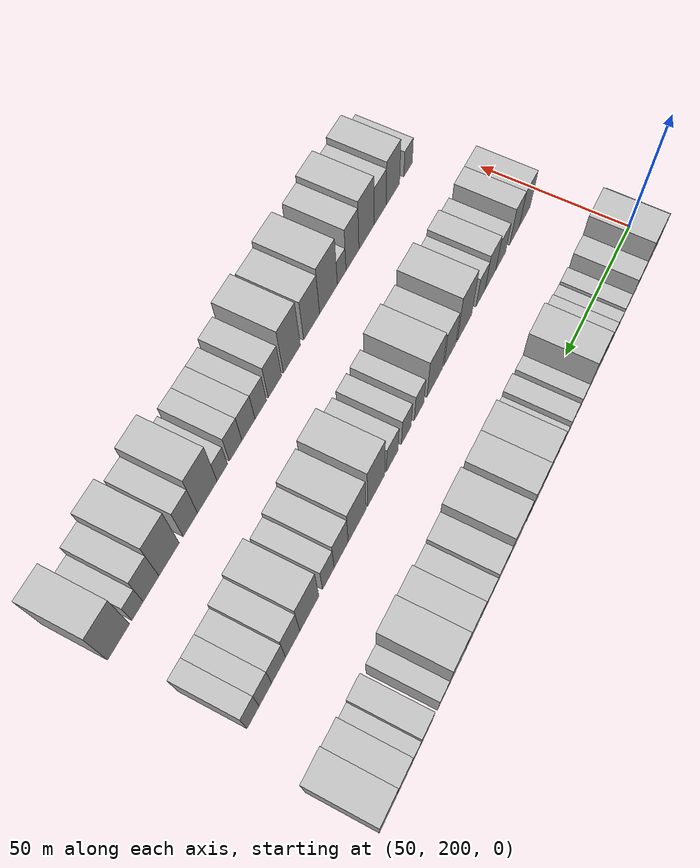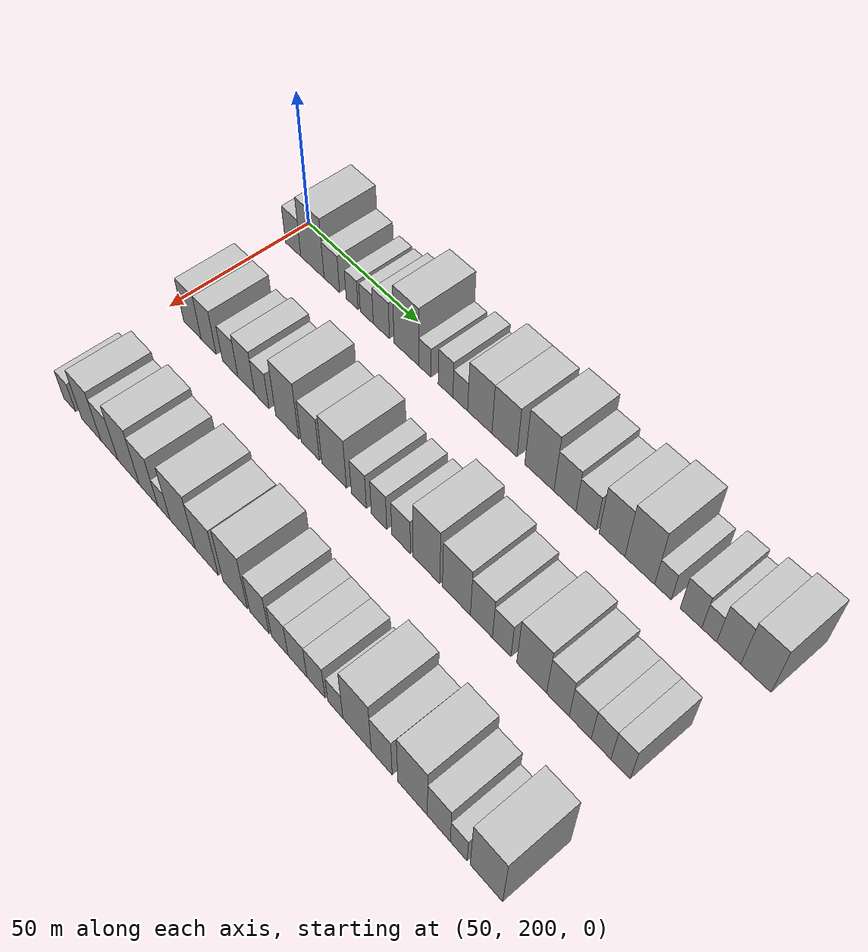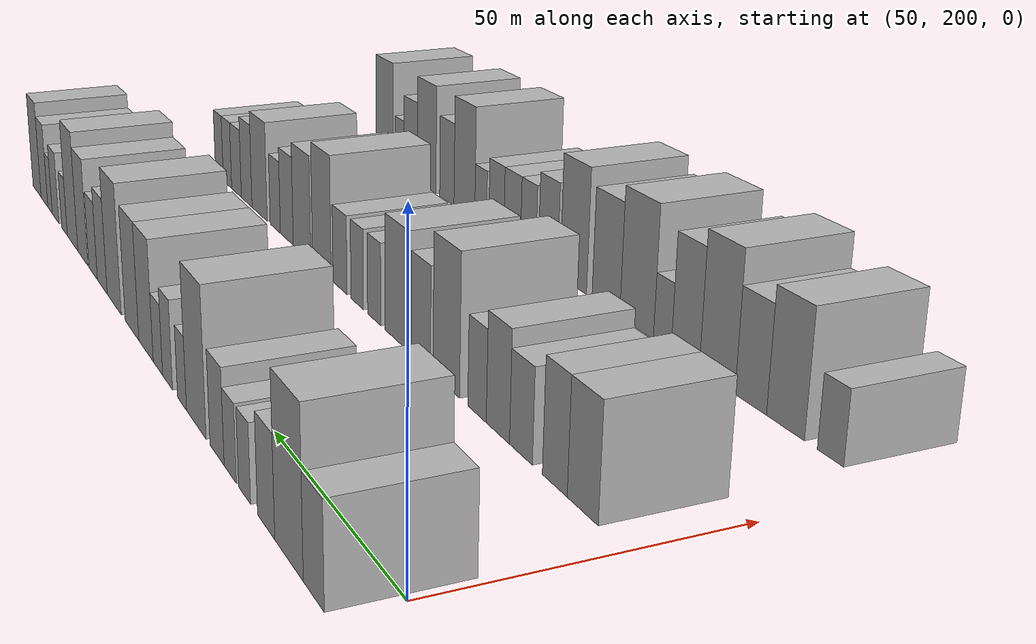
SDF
<sdf version="1.6">
 <world name="default">
  <model name="building_68">
   <static>1</static>
   <pose>50.0000 205.2571 0 0.000000 0.000000 0.000000</pose>
   <link name="link">
    <pose>0 0 7.50 0 0 0</pose>
    <collision name="collision"><geometry><box><size>20.0000 7.4056 15.0000</size></box></geometry></collision>
    <visual name="visual">
     <cast_shadows>0</cast_shadows>
     <geometry><box><size>20.0000 7.4056 15.0000</size></box></geometry>
     <material>
      <script>
       <uri>model://HANNAS_wall/materials/scripts</uri>
       <uri>model://HANNAS_wall/materials/textures</uri>
       <name>vrc/HANNAS_wall</name>
      </script>
     </material>
    </visual>
   </link>
  </model>
  <model name="building_69">
   <static>1</static>
   <pose>50.0000 214.4548 0 0.000000 0.000000 0.000000</pose>
   <link name="link">
    <pose>0 0 12.00 0 0 0</pose>
    <collision name="collision"><geometry><box><size>20.0000 10.9900 24.0000</size></box></geometry></collision>
    <visual name="visual">
     <cast_shadows>0</cast_shadows>
     <geometry><box><size>20.0000 10.9900 24.0000</size></box></geometry>
     <material>
      <script>
       <uri>model://HANNAS_wall/materials/scripts</uri>
       <uri>model://HANNAS_wall/materials/textures</uri>
       <name>vrc/HANNAS_wall</name>
      </script>
     </material>
    </visual>
   </link>
  </model>
  <model name="building_70">
   <static>1</static>
   <pose>50.0000 223.5396 0 0.000000 0.000000 0.000000</pose>
   <link name="link">
    <pose>0 0 7.50 0 0 0</pose>
    <collision name="collision"><geometry><box><size>20.0000 7.1795 15.0000</size></box></geometry></collision>
    <visual name="visual">
     <cast_shadows>0</cast_shadows>
     <geometry><box><size>20.0000 7.1795 15.0000</size></box></geometry>
     <material>
      <script>
       <uri>model://HANNAS_wall/materials/scripts</uri>
       <uri>model://HANNAS_wall/materials/textures</uri>
       <name>vrc/HANNAS_wall</name>
      </script>
     </material>
    </visual>
   </link>
  </model>
  <model name="building_71">
   <static>1</static>
   <pose>50.0000 232.8363 0 0.000000 0.000000 0.000000</pose>
   <link name="link">
    <pose>0 0 6.00 0 0 0</pose>
    <collision name="collision"><geometry><box><size>20.0000 5.4140 12.0000</size></box></geometry></collision>
    <visual name="visual">
     <cast_shadows>0</cast_shadows>
     <geometry><box><size>20.0000 5.4140 12.0000</size></box></geometry>
     <material>
      <script>
       <uri>model://HANNAS_wall/materials/scripts</uri>
       <uri>model://HANNAS_wall/materials/textures</uri>
       <name>vrc/HANNAS_wall</name>
      </script>
     </material>
    </visual>
   </link>
  </model>
  <model name="building_72">
   <static>1</static>
   <pose>50.0000 239.4439 0 0.000000 0.000000 0.000000</pose>
   <link name="link">
    <pose>0 0 6.00 0 0 0</pose>
    <collision name="collision"><geometry><box><size>20.0000 5.8013 12.0000</size></box></geometry></collision>
    <visual name="visual">
     <cast_shadows>0</cast_shadows>
     <geometry><box><size>20.0000 5.8013 12.0000</size></box></geometry>
     <material>
      <script>
       <uri>model://HANNAS_wall/materials/scripts</uri>
       <uri>model://HANNAS_wall/materials/textures</uri>
       <name>vrc/HANNAS_wall</name>
      </script>
     </material>
    </visual>
   </link>
  </model>
  <model name="building_73">
   <static>1</static>
   <pose>50.0000 245.8884 0 0.000000 0.000000 0.000000</pose>
   <link name="link">
    <pose>0 0 7.50 0 0 0</pose>
    <collision name="collision"><geometry><box><size>20.0000 7.0877 15.0000</size></box></geometry></collision>
    <visual name="visual">
     <cast_shadows>0</cast_shadows>
     <geometry><box><size>20.0000 7.0877 15.0000</size></box></geometry>
     <material>
      <script>
       <uri>model://HANNAS_wall/materials/scripts</uri>
       <uri>model://HANNAS_wall/materials/textures</uri>
       <name>vrc/HANNAS_wall</name>
      </script>
     </material>
    </visual>
   </link>
  </model>
  <model name="building_74">
   <static>1</static>
   <pose>50.0000 256.7612 0 0.000000 0.000000 0.000000</pose>
   <link name="link">
    <pose>0 0 12.00 0 0 0</pose>
    <collision name="collision"><geometry><box><size>20.0000 10.6578 24.0000</size></box></geometry></collision>
    <visual name="visual">
     <cast_shadows>0</cast_shadows>
     <geometry><box><size>20.0000 10.6578 24.0000</size></box></geometry>
     <material>
      <script>
       <uri>model://HANNAS_wall/materials/scripts</uri>
       <uri>model://HANNAS_wall/materials/textures</uri>
       <name>vrc/HANNAS_wall</name>
      </script>
     </material>
    </visual>
   </link>
  </model>
  <model name="building_75">
   <static>1</static>
   <pose>50.0000 264.6438 0 0.000000 0.000000 0.000000</pose>
   <link name="link">
    <pose>0 0 6.00 0 0 0</pose>
    <collision name="collision"><geometry><box><size>20.0000 5.1075 12.0000</size></box></geometry></collision>
    <visual name="visual">
     <cast_shadows>0</cast_shadows>
     <geometry><box><size>20.0000 5.1075 12.0000</size></box></geometry>
     <material>
      <script>
       <uri>model://HANNAS_wall/materials/scripts</uri>
       <uri>model://HANNAS_wall/materials/textures</uri>
       <name>vrc/HANNAS_wall</name>
      </script>
     </material>
    </visual>
   </link>
  </model>
  <model name="building_76">
   <static>1</static>
   <pose>50.0000 273.2341 0 0.000000 0.000000 0.000000</pose>
   <link name="link">
    <pose>0 0 7.50 0 0 0</pose>
    <collision name="collision"><geometry><box><size>20.0000 6.0730 15.0000</size></box></geometry></collision>
    <visual name="visual">
     <cast_shadows>0</cast_shadows>
     <geometry><box><size>20.0000 6.0730 15.0000</size></box></geometry>
     <material>
      <script>
       <uri>model://HANNAS_wall/materials/scripts</uri>
       <uri>model://HANNAS_wall/materials/textures</uri>
       <name>vrc/HANNAS_wall</name>
      </script>
     </material>
    </visual>
   </link>
  </model>
  <model name="building_77">
   <static>1</static>
   <pose>50.0000 279.2664 0 0.000000 0.000000 0.000000</pose>
   <link name="link">
    <pose>0 0 6.00 0 0 0</pose>
    <collision name="collision"><geometry><box><size>20.0000 5.9915 12.0000</size></box></geometry></collision>
    <visual name="visual">
     <cast_shadows>0</cast_shadows>
     <geometry><box><size>20.0000 5.9915 12.0000</size></box></geometry>
     <material>
      <script>
       <uri>model://HANNAS_wall/materials/scripts</uri>
       <uri>model://HANNAS_wall/materials/textures</uri>
       <name>vrc/HANNAS_wall</name>
      </script>
     </material>
    </visual>
   </link>
  </model>
  <model name="building_78">
   <static>1</static>
   <pose>50.0000 287.1073 0 0.000000 0.000000 0.000000</pose>
   <link name="link">
    <pose>0 0 10.50 0 0 0</pose>
    <collision name="collision"><geometry><box><size>20.0000 9.6904 21.0000</size></box></geometry></collision>
    <visual name="visual">
     <cast_shadows>0</cast_shadows>
     <geometry><box><size>20.0000 9.6904 21.0000</size></box></geometry>
     <material>
      <script>
       <uri>model://HANNAS_wall/materials/scripts</uri>
       <uri>model://HANNAS_wall/materials/textures</uri>
       <name>vrc/HANNAS_wall</name>
      </script>
     </material>
    </visual>
   </link>
  </model>
  <model name="building_79">
   <static>1</static>
   <pose>50.0000 296.8444 0 0.000000 0.000000 0.000000</pose>
   <link name="link">
    <pose>0 0 10.50 0 0 0</pose>
    <collision name="collision"><geometry><box><size>20.0000 9.7837 21.0000</size></box></geometry></collision>
    <visual name="visual">
     <cast_shadows>0</cast_shadows>
     <geometry><box><size>20.0000 9.7837 21.0000</size></box></geometry>
     <material>
      <script>
       <uri>model://HANNAS_wall/materials/scripts</uri>
       <uri>model://HANNAS_wall/materials/textures</uri>
       <name>vrc/HANNAS_wall</name>
      </script>
     </material>
    </visual>
   </link>
  </model>
  <model name="building_80">
   <static>1</static>
   <pose>50.0000 310.2275 0 0.000000 0.000000 0.000000</pose>
   <link name="link">
    <pose>0 0 12.00 0 0 0</pose>
    <collision name="collision"><geometry><box><size>20.0000 10.9825 24.0000</size></box></geometry></collision>
    <visual name="visual">
     <cast_shadows>0</cast_shadows>
     <geometry><box><size>20.0000 10.9825 24.0000</size></box></geometry>
     <material>
      <script>
       <uri>model://HANNAS_wall/materials/scripts</uri>
       <uri>model://HANNAS_wall/materials/textures</uri>
       <name>vrc/HANNAS_wall</name>
      </script>
     </material>
    </visual>
   </link>
  </model>
  <model name="building_81">
   <static>1</static>
   <pose>50.0000 319.7629 0 0.000000 0.000000 0.000000</pose>
   <link name="link">
    <pose>0 0 9.00 0 0 0</pose>
    <collision name="collision"><geometry><box><size>20.0000 8.0884 18.0000</size></box></geometry></collision>
    <visual name="visual">
     <cast_shadows>0</cast_shadows>
     <geometry><box><size>20.0000 8.0884 18.0000</size></box></geometry>
     <material>
      <script>
       <uri>model://HANNAS_wall/materials/scripts</uri>
       <uri>model://HANNAS_wall/materials/textures</uri>
       <name>vrc/HANNAS_wall</name>
      </script>
     </material>
    </visual>
   </link>
  </model>
  <model name="building_82">
   <static>1</static>
   <pose>50.0000 327.4705 0 0.000000 0.000000 0.000000</pose>
   <link name="link">
    <pose>0 0 7.50 0 0 0</pose>
    <collision name="collision"><geometry><box><size>20.0000 7.3268 15.0000</size></box></geometry></collision>
    <visual name="visual">
     <cast_shadows>0</cast_shadows>
     <geometry><box><size>20.0000 7.3268 15.0000</size></box></geometry>
     <material>
      <script>
       <uri>model://HANNAS_wall/materials/scripts</uri>
       <uri>model://HANNAS_wall/materials/textures</uri>
       <name>vrc/HANNAS_wall</name>
      </script>
     </material>
    </visual>
   </link>
  </model>
  <model name="building_83">
   <static>1</static>
   <pose>50.0000 336.6764 0 0.000000 0.000000 0.000000</pose>
   <link name="link">
    <pose>0 0 10.50 0 0 0</pose>
    <collision name="collision"><geometry><box><size>20.0000 9.0850 21.0000</size></box></geometry></collision>
    <visual name="visual">
     <cast_shadows>0</cast_shadows>
     <geometry><box><size>20.0000 9.0850 21.0000</size></box></geometry>
     <material>
      <script>
       <uri>model://HANNAS_wall/materials/scripts</uri>
       <uri>model://HANNAS_wall/materials/textures</uri>
       <name>vrc/HANNAS_wall</name>
      </script>
     </material>
    </visual>
   </link>
  </model>
  <model name="building_84">
   <static>1</static>
   <pose>50.0000 346.3430 0 0.000000 0.000000 0.000000</pose>
   <link name="link">
    <pose>0 0 12.00 0 0 0</pose>
    <collision name="collision"><geometry><box><size>20.0000 10.2481 24.0000</size></box></geometry></collision>
    <visual name="visual">
     <cast_shadows>0</cast_shadows>
     <geometry><box><size>20.0000 10.2481 24.0000</size></box></geometry>
     <material>
      <script>
       <uri>model://HANNAS_wall/materials/scripts</uri>
       <uri>model://HANNAS_wall/materials/textures</uri>
       <name>vrc/HANNAS_wall</name>
      </script>
     </material>
    </visual>
   </link>
  </model>
  <model name="building_85">
   <static>1</static>
   <pose>50.0000 354.2558 0 0.000000 0.000000 0.000000</pose>
   <link name="link">
    <pose>0 0 6.00 0 0 0</pose>
    <collision name="collision"><geometry><box><size>20.0000 5.5775 12.0000</size></box></geometry></collision>
    <visual name="visual">
     <cast_shadows>0</cast_shadows>
     <geometry><box><size>20.0000 5.5775 12.0000</size></box></geometry>
     <material>
      <script>
       <uri>model://HANNAS_wall/materials/scripts</uri>
       <uri>model://HANNAS_wall/materials/textures</uri>
       <name>vrc/HANNAS_wall</name>
      </script>
     </material>
    </visual>
   </link>
  </model>
  <model name="building_86">
   <static>1</static>
   <pose>50.0000 363.5669 0 0.000000 0.000000 0.000000</pose>
   <link name="link">
    <pose>0 0 7.50 0 0 0</pose>
    <collision name="collision"><geometry><box><size>20.0000 7.0446 15.0000</size></box></geometry></collision>
    <visual name="visual">
     <cast_shadows>0</cast_shadows>
     <geometry><box><size>20.0000 7.0446 15.0000</size></box></geometry>
     <material>
      <script>
       <uri>model://HANNAS_wall/materials/scripts</uri>
       <uri>model://HANNAS_wall/materials/textures</uri>
       <name>vrc/HANNAS_wall</name>
      </script>
     </material>
    </visual>
   </link>
  </model>
  <model name="building_87">
   <static>1</static>
   <pose>50.0000 369.4919 0 0.000000 0.000000 0.000000</pose>
   <link name="link">
    <pose>0 0 6.00 0 0 0</pose>
    <collision name="collision"><geometry><box><size>20.0000 4.8054 12.0000</size></box></geometry></collision>
    <visual name="visual">
     <cast_shadows>0</cast_shadows>
     <geometry><box><size>20.0000 4.8054 12.0000</size></box></geometry>
     <material>
      <script>
       <uri>model://HANNAS_wall/materials/scripts</uri>
       <uri>model://HANNAS_wall/materials/textures</uri>
       <name>vrc/HANNAS_wall</name>
      </script>
     </material>
    </visual>
   </link>
  </model>
  <model name="building_88">
   <static>1</static>
   <pose>50.0000 375.7331 0 0.000000 0.000000 0.000000</pose>
   <link name="link">
    <pose>0 0 9.00 0 0 0</pose>
    <collision name="collision"><geometry><box><size>20.0000 7.6770 18.0000</size></box></geometry></collision>
    <visual name="visual">
     <cast_shadows>0</cast_shadows>
     <geometry><box><size>20.0000 7.6770 18.0000</size></box></geometry>
     <material>
      <script>
       <uri>model://HANNAS_wall/materials/scripts</uri>
       <uri>model://HANNAS_wall/materials/textures</uri>
       <name>vrc/HANNAS_wall</name>
      </script>
     </material>
    </visual>
   </link>
  </model>
  <model name="building_89">
   <static>1</static>
   <pose>50.0000 384.2722 0 0.000000 0.000000 0.000000</pose>
   <link name="link">
    <pose>0 0 10.50 0 0 0</pose>
    <collision name="collision"><geometry><box><size>20.0000 9.4011 21.0000</size></box></geometry></collision>
    <visual name="visual">
     <cast_shadows>0</cast_shadows>
     <geometry><box><size>20.0000 9.4011 21.0000</size></box></geometry>
     <material>
      <script>
       <uri>model://HANNAS_wall/materials/scripts</uri>
       <uri>model://HANNAS_wall/materials/textures</uri>
       <name>vrc/HANNAS_wall</name>
      </script>
     </material>
    </visual>
   </link>
  </model>
  <model name="building_150">
   <static>1</static>
   <pose>90.0000 211.3827 0 0.000000 0.000000 0.000000</pose>
   <link name="link">
    <pose>0 0 9.00 0 0 0</pose>
    <collision name="collision"><geometry><box><size>20.0000 8.4586 18.0000</size></box></geometry></collision>
    <visual name="visual">
     <cast_shadows>0</cast_shadows>
     <geometry><box><size>20.0000 8.4586 18.0000</size></box></geometry>
     <material>
      <script>
       <uri>model://HANNAS_wall/materials/scripts</uri>
       <uri>model://HANNAS_wall/materials/textures</uri>
       <name>vrc/HANNAS_wall</name>
      </script>
     </material>
    </visual>
   </link>
  </model>
  <model name="building_151">
   <static>1</static>
   <pose>90.0000 219.2127 0 0.000000 0.000000 0.000000</pose>
   <link name="link">
    <pose>0 0 9.00 0 0 0</pose>
    <collision name="collision"><geometry><box><size>20.0000 7.2016 18.0000</size></box></geometry></collision>
    <visual name="visual">
     <cast_shadows>0</cast_shadows>
     <geometry><box><size>20.0000 7.2016 18.0000</size></box></geometry>
     <material>
      <script>
       <uri>model://HANNAS_wall/materials/scripts</uri>
       <uri>model://HANNAS_wall/materials/textures</uri>
       <name>vrc/HANNAS_wall</name>
      </script>
     </material>
    </visual>
   </link>
  </model>
  <model name="building_152">
   <static>1</static>
   <pose>90.0000 229.4097 0 0.000000 0.000000 0.000000</pose>
   <link name="link">
    <pose>0 0 7.50 0 0 0</pose>
    <collision name="collision"><geometry><box><size>20.0000 7.1923 15.0000</size></box></geometry></collision>
    <visual name="visual">
     <cast_shadows>0</cast_shadows>
     <geometry><box><size>20.0000 7.1923 15.0000</size></box></geometry>
     <material>
      <script>
       <uri>model://HANNAS_wall/materials/scripts</uri>
       <uri>model://HANNAS_wall/materials/textures</uri>
       <name>vrc/HANNAS_wall</name>
      </script>
     </material>
    </visual>
   </link>
  </model>
  <model name="building_153">
   <static>1</static>
   <pose>90.0000 236.8780 0 0.000000 0.000000 0.000000</pose>
   <link name="link">
    <pose>0 0 9.00 0 0 0</pose>
    <collision name="collision"><geometry><box><size>20.0000 7.7442 18.0000</size></box></geometry></collision>
    <visual name="visual">
     <cast_shadows>0</cast_shadows>
     <geometry><box><size>20.0000 7.7442 18.0000</size></box></geometry>
     <material>
      <script>
       <uri>model://HANNAS_wall/materials/scripts</uri>
       <uri>model://HANNAS_wall/materials/textures</uri>
       <name>vrc/HANNAS_wall</name>
      </script>
     </material>
    </visual>
   </link>
  </model>
  <model name="building_154">
   <static>1</static>
   <pose>90.0000 243.9817 0 0.000000 0.000000 0.000000</pose>
   <link name="link">
    <pose>0 0 7.50 0 0 0</pose>
    <collision name="collision"><geometry><box><size>20.0000 6.4632 15.0000</size></box></geometry></collision>
    <visual name="visual">
     <cast_shadows>0</cast_shadows>
     <geometry><box><size>20.0000 6.4632 15.0000</size></box></geometry>
     <material>
      <script>
       <uri>model://HANNAS_wall/materials/scripts</uri>
       <uri>model://HANNAS_wall/materials/textures</uri>
       <name>vrc/HANNAS_wall</name>
      </script>
     </material>
    </visual>
   </link>
  </model>
  <model name="building_155">
   <static>1</static>
   <pose>90.0000 255.2758 0 0.000000 0.000000 0.000000</pose>
   <link name="link">
    <pose>0 0 12.00 0 0 0</pose>
    <collision name="collision"><geometry><box><size>20.0000 10.1251 24.0000</size></box></geometry></collision>
    <visual name="visual">
     <cast_shadows>0</cast_shadows>
     <geometry><box><size>20.0000 10.1251 24.0000</size></box></geometry>
     <material>
      <script>
       <uri>model://HANNAS_wall/materials/scripts</uri>
       <uri>model://HANNAS_wall/materials/textures</uri>
       <name>vrc/HANNAS_wall</name>
      </script>
     </material>
    </visual>
   </link>
  </model>
  <model name="building_156">
   <static>1</static>
   <pose>90.0000 265.2712 0 0.000000 0.000000 0.000000</pose>
   <link name="link">
    <pose>0 0 9.00 0 0 0</pose>
    <collision name="collision"><geometry><box><size>20.0000 7.8659 18.0000</size></box></geometry></collision>
    <visual name="visual">
     <cast_shadows>0</cast_shadows>
     <geometry><box><size>20.0000 7.8659 18.0000</size></box></geometry>
     <material>
      <script>
       <uri>model://HANNAS_wall/materials/scripts</uri>
       <uri>model://HANNAS_wall/materials/textures</uri>
       <name>vrc/HANNAS_wall</name>
      </script>
     </material>
    </visual>
   </link>
  </model>
  <model name="building_157">
   <static>1</static>
   <pose>90.0000 275.3597 0 0.000000 0.000000 0.000000</pose>
   <link name="link">
    <pose>0 0 10.50 0 0 0</pose>
    <collision name="collision"><geometry><box><size>20.0000 10.3111 21.0000</size></box></geometry></collision>
    <visual name="visual">
     <cast_shadows>0</cast_shadows>
     <geometry><box><size>20.0000 10.3111 21.0000</size></box></geometry>
     <material>
      <script>
       <uri>model://HANNAS_wall/materials/scripts</uri>
       <uri>model://HANNAS_wall/materials/textures</uri>
       <name>vrc/HANNAS_wall</name>
      </script>
     </material>
    </visual>
   </link>
  </model>
  <model name="building_158">
   <static>1</static>
   <pose>90.0000 285.5769 0 0.000000 0.000000 0.000000</pose>
   <link name="link">
    <pose>0 0 7.50 0 0 0</pose>
    <collision name="collision"><geometry><box><size>20.0000 6.1232 15.0000</size></box></geometry></collision>
    <visual name="visual">
     <cast_shadows>0</cast_shadows>
     <geometry><box><size>20.0000 6.1232 15.0000</size></box></geometry>
     <material>
      <script>
       <uri>model://HANNAS_wall/materials/scripts</uri>
       <uri>model://HANNAS_wall/materials/textures</uri>
       <name>vrc/HANNAS_wall</name>
      </script>
     </material>
    </visual>
   </link>
  </model>
  <model name="building_159">
   <static>1</static>
   <pose>90.0000 293.6932 0 0.000000 0.000000 0.000000</pose>
   <link name="link">
    <pose>0 0 7.50 0 0 0</pose>
    <collision name="collision"><geometry><box><size>20.0000 6.1094 15.0000</size></box></geometry></collision>
    <visual name="visual">
     <cast_shadows>0</cast_shadows>
     <geometry><box><size>20.0000 6.1094 15.0000</size></box></geometry>
     <material>
      <script>
       <uri>model://HANNAS_wall/materials/scripts</uri>
       <uri>model://HANNAS_wall/materials/textures</uri>
       <name>vrc/HANNAS_wall</name>
      </script>
     </material>
    </visual>
   </link>
  </model>
  <model name="building_160">
   <static>1</static>
   <pose>90.0000 302.3668 0 0.000000 0.000000 0.000000</pose>
   <link name="link">
    <pose>0 0 7.50 0 0 0</pose>
    <collision name="collision"><geometry><box><size>20.0000 7.2378 15.0000</size></box></geometry></collision>
    <visual name="visual">
     <cast_shadows>0</cast_shadows>
     <geometry><box><size>20.0000 7.2378 15.0000</size></box></geometry>
     <material>
      <script>
       <uri>model://HANNAS_wall/materials/scripts</uri>
       <uri>model://HANNAS_wall/materials/textures</uri>
       <name>vrc/HANNAS_wall</name>
      </script>
     </material>
    </visual>
   </link>
  </model>
  <model name="building_161">
   <static>1</static>
   <pose>90.0000 312.0725 0 0.000000 0.000000 0.000000</pose>
   <link name="link">
    <pose>0 0 12.00 0 0 0</pose>
    <collision name="collision"><geometry><box><size>20.0000 10.1736 24.0000</size></box></geometry></collision>
    <visual name="visual">
     <cast_shadows>0</cast_shadows>
     <geometry><box><size>20.0000 10.1736 24.0000</size></box></geometry>
     <material>
      <script>
       <uri>model://HANNAS_wall/materials/scripts</uri>
       <uri>model://HANNAS_wall/materials/textures</uri>
       <name>vrc/HANNAS_wall</name>
      </script>
     </material>
    </visual>
   </link>
  </model>
  <model name="building_162">
   <static>1</static>
   <pose>90.0000 323.3157 0 0.000000 0.000000 0.000000</pose>
   <link name="link">
    <pose>0 0 10.50 0 0 0</pose>
    <collision name="collision"><geometry><box><size>20.0000 10.3127 21.0000</size></box></geometry></collision>
    <visual name="visual">
     <cast_shadows>0</cast_shadows>
     <geometry><box><size>20.0000 10.3127 21.0000</size></box></geometry>
     <material>
      <script>
       <uri>model://HANNAS_wall/materials/scripts</uri>
       <uri>model://HANNAS_wall/materials/textures</uri>
       <name>vrc/HANNAS_wall</name>
      </script>
     </material>
    </visual>
   </link>
  </model>
  <model name="building_163">
   <static>1</static>
   <pose>90.0000 332.4497 0 0.000000 0.000000 0.000000</pose>
   <link name="link">
    <pose>0 0 9.00 0 0 0</pose>
    <collision name="collision"><geometry><box><size>20.0000 7.9554 18.0000</size></box></geometry></collision>
    <visual name="visual">
     <cast_shadows>0</cast_shadows>
     <geometry><box><size>20.0000 7.9554 18.0000</size></box></geometry>
     <material>
      <script>
       <uri>model://HANNAS_wall/materials/scripts</uri>
       <uri>model://HANNAS_wall/materials/textures</uri>
       <name>vrc/HANNAS_wall</name>
      </script>
     </material>
    </visual>
   </link>
  </model>
  <model name="building_164">
   <static>1</static>
   <pose>90.0000 339.6902 0 0.000000 0.000000 0.000000</pose>
   <link name="link">
    <pose>0 0 7.50 0 0 0</pose>
    <collision name="collision"><geometry><box><size>20.0000 6.5255 15.0000</size></box></geometry></collision>
    <visual name="visual">
     <cast_shadows>0</cast_shadows>
     <geometry><box><size>20.0000 6.5255 15.0000</size></box></geometry>
     <material>
      <script>
       <uri>model://HANNAS_wall/materials/scripts</uri>
       <uri>model://HANNAS_wall/materials/textures</uri>
       <name>vrc/HANNAS_wall</name>
      </script>
     </material>
    </visual>
   </link>
  </model>
  <model name="building_165">
   <static>1</static>
   <pose>90.0000 350.0925 0 0.000000 0.000000 0.000000</pose>
   <link name="link">
    <pose>0 0 10.50 0 0 0</pose>
    <collision name="collision"><geometry><box><size>20.0000 10.2790 21.0000</size></box></geometry></collision>
    <visual name="visual">
     <cast_shadows>0</cast_shadows>
     <geometry><box><size>20.0000 10.2790 21.0000</size></box></geometry>
     <material>
      <script>
       <uri>model://HANNAS_wall/materials/scripts</uri>
       <uri>model://HANNAS_wall/materials/textures</uri>
       <name>vrc/HANNAS_wall</name>
      </script>
     </material>
    </visual>
   </link>
  </model>
  <model name="building_166">
   <static>1</static>
   <pose>90.0000 359.0181 0 0.000000 0.000000 0.000000</pose>
   <link name="link">
    <pose>0 0 9.00 0 0 0</pose>
    <collision name="collision"><geometry><box><size>20.0000 7.5721 18.0000</size></box></geometry></collision>
    <visual name="visual">
     <cast_shadows>0</cast_shadows>
     <geometry><box><size>20.0000 7.5721 18.0000</size></box></geometry>
     <material>
      <script>
       <uri>model://HANNAS_wall/materials/scripts</uri>
       <uri>model://HANNAS_wall/materials/textures</uri>
       <name>vrc/HANNAS_wall</name>
      </script>
     </material>
    </visual>
   </link>
  </model>
  <model name="building_167">
   <static>1</static>
   <pose>90.0000 366.4004 0 0.000000 0.000000 0.000000</pose>
   <link name="link">
    <pose>0 0 7.50 0 0 0</pose>
    <collision name="collision"><geometry><box><size>20.0000 7.1927 15.0000</size></box></geometry></collision>
    <visual name="visual">
     <cast_shadows>0</cast_shadows>
     <geometry><box><size>20.0000 7.1927 15.0000</size></box></geometry>
     <material>
      <script>
       <uri>model://HANNAS_wall/materials/scripts</uri>
       <uri>model://HANNAS_wall/materials/textures</uri>
       <name>vrc/HANNAS_wall</name>
      </script>
     </material>
    </visual>
   </link>
  </model>
  <model name="building_168">
   <static>1</static>
   <pose>90.0000 373.1721 0 0.000000 0.000000 0.000000</pose>
   <link name="link">
    <pose>0 0 7.50 0 0 0</pose>
    <collision name="collision"><geometry><box><size>20.0000 6.3507 15.0000</size></box></geometry></collision>
    <visual name="visual">
     <cast_shadows>0</cast_shadows>
     <geometry><box><size>20.0000 6.3507 15.0000</size></box></geometry>
     <material>
      <script>
       <uri>model://HANNAS_wall/materials/scripts</uri>
       <uri>model://HANNAS_wall/materials/textures</uri>
       <name>vrc/HANNAS_wall</name>
      </script>
     </material>
    </visual>
   </link>
  </model>
  <model name="building_169">
   <static>1</static>
   <pose>90.0000 379.3980 0 0.000000 0.000000 0.000000</pose>
   <link name="link">
    <pose>0 0 7.50 0 0 0</pose>
    <collision name="collision"><geometry><box><size>20.0000 6.1011 15.0000</size></box></geometry></collision>
    <visual name="visual">
     <cast_shadows>0</cast_shadows>
     <geometry><box><size>20.0000 6.1011 15.0000</size></box></geometry>
     <material>
      <script>
       <uri>model://HANNAS_wall/materials/scripts</uri>
       <uri>model://HANNAS_wall/materials/textures</uri>
       <name>vrc/HANNAS_wall</name>
      </script>
     </material>
    </visual>
   </link>
  </model>
  <model name="building_231">
   <static>1</static>
   <pose>130.0000 211.4735 0 0.000000 0.000000 0.000000</pose>
   <link name="link">
    <pose>0 0 6.00 0 0 0</pose>
    <collision name="collision"><geometry><box><size>20.0000 5.9973 12.0000</size></box></geometry></collision>
    <visual name="visual">
     <cast_shadows>0</cast_shadows>
     <geometry><box><size>20.0000 5.9973 12.0000</size></box></geometry>
     <material>
      <script>
       <uri>model://HANNAS_wall/materials/scripts</uri>
       <uri>model://HANNAS_wall/materials/textures</uri>
       <name>vrc/HANNAS_wall</name>
      </script>
     </material>
    </visual>
   </link>
  </model>
  <model name="building_232">
   <static>1</static>
   <pose>130.0000 222.1567 0 0.000000 0.000000 0.000000</pose>
   <link name="link">
    <pose>0 0 10.50 0 0 0</pose>
    <collision name="collision"><geometry><box><size>20.0000 9.3692 21.0000</size></box></geometry></collision>
    <visual name="visual">
     <cast_shadows>0</cast_shadows>
     <geometry><box><size>20.0000 9.3692 21.0000</size></box></geometry>
     <material>
      <script>
       <uri>model://HANNAS_wall/materials/scripts</uri>
       <uri>model://HANNAS_wall/materials/textures</uri>
       <name>vrc/HANNAS_wall</name>
      </script>
     </material>
    </visual>
   </link>
  </model>
  <model name="building_233">
   <static>1</static>
   <pose>130.0000 230.9730 0 0.000000 0.000000 0.000000</pose>
   <link name="link">
    <pose>0 0 9.00 0 0 0</pose>
    <collision name="collision"><geometry><box><size>20.0000 8.2633 18.0000</size></box></geometry></collision>
    <visual name="visual">
     <cast_shadows>0</cast_shadows>
     <geometry><box><size>20.0000 8.2633 18.0000</size></box></geometry>
     <material>
      <script>
       <uri>model://HANNAS_wall/materials/scripts</uri>
       <uri>model://HANNAS_wall/materials/textures</uri>
       <name>vrc/HANNAS_wall</name>
      </script>
     </material>
    </visual>
   </link>
  </model>
  <model name="building_234">
   <static>1</static>
   <pose>130.0000 240.1171 0 0.000000 0.000000 0.000000</pose>
   <link name="link">
    <pose>0 0 12.00 0 0 0</pose>
    <collision name="collision"><geometry><box><size>20.0000 10.0249 24.0000</size></box></geometry></collision>
    <visual name="visual">
     <cast_shadows>0</cast_shadows>
     <geometry><box><size>20.0000 10.0249 24.0000</size></box></geometry>
     <material>
      <script>
       <uri>model://HANNAS_wall/materials/scripts</uri>
       <uri>model://HANNAS_wall/materials/textures</uri>
       <name>vrc/HANNAS_wall</name>
      </script>
     </material>
    </visual>
   </link>
  </model>
  <model name="building_235">
   <static>1</static>
   <pose>130.0000 249.3340 0 0.000000 0.000000 0.000000</pose>
   <link name="link">
    <pose>0 0 10.50 0 0 0</pose>
    <collision name="collision"><geometry><box><size>20.0000 8.4088 21.0000</size></box></geometry></collision>
    <visual name="visual">
     <cast_shadows>0</cast_shadows>
     <geometry><box><size>20.0000 8.4088 21.0000</size></box></geometry>
     <material>
      <script>
       <uri>model://HANNAS_wall/materials/scripts</uri>
       <uri>model://HANNAS_wall/materials/textures</uri>
       <name>vrc/HANNAS_wall</name>
      </script>
     </material>
    </visual>
   </link>
  </model>
  <model name="building_236">
   <static>1</static>
   <pose>130.0000 256.3153 0 0.000000 0.000000 0.000000</pose>
   <link name="link">
    <pose>0 0 6.00 0 0 0</pose>
    <collision name="collision"><geometry><box><size>20.0000 5.5538 12.0000</size></box></geometry></collision>
    <visual name="visual">
     <cast_shadows>0</cast_shadows>
     <geometry><box><size>20.0000 5.5538 12.0000</size></box></geometry>
     <material>
      <script>
       <uri>model://HANNAS_wall/materials/scripts</uri>
       <uri>model://HANNAS_wall/materials/textures</uri>
       <name>vrc/HANNAS_wall</name>
      </script>
     </material>
    </visual>
   </link>
  </model>
  <model name="building_237">
   <static>1</static>
   <pose>130.0000 264.6673 0 0.000000 0.000000 0.000000</pose>
   <link name="link">
    <pose>0 0 12.00 0 0 0</pose>
    <collision name="collision"><geometry><box><size>20.0000 11.1502 24.0000</size></box></geometry></collision>
    <visual name="visual">
     <cast_shadows>0</cast_shadows>
     <geometry><box><size>20.0000 11.1502 24.0000</size></box></geometry>
     <material>
      <script>
       <uri>model://HANNAS_wall/materials/scripts</uri>
       <uri>model://HANNAS_wall/materials/textures</uri>
       <name>vrc/HANNAS_wall</name>
      </script>
     </material>
    </visual>
   </link>
  </model>
  <model name="building_238">
   <static>1</static>
   <pose>130.0000 275.1521 0 0.000000 0.000000 0.000000</pose>
   <link name="link">
    <pose>0 0 10.50 0 0 0</pose>
    <collision name="collision"><geometry><box><size>20.0000 9.8193 21.0000</size></box></geometry></collision>
    <visual name="visual">
     <cast_shadows>0</cast_shadows>
     <geometry><box><size>20.0000 9.8193 21.0000</size></box></geometry>
     <material>
      <script>
       <uri>model://HANNAS_wall/materials/scripts</uri>
       <uri>model://HANNAS_wall/materials/textures</uri>
       <name>vrc/HANNAS_wall</name>
      </script>
     </material>
    </visual>
   </link>
  </model>
  <model name="building_239">
   <static>1</static>
   <pose>130.0000 287.1301 0 0.000000 0.000000 0.000000</pose>
   <link name="link">
    <pose>0 0 12.00 0 0 0</pose>
    <collision name="collision"><geometry><box><size>20.0000 10.1367 24.0000</size></box></geometry></collision>
    <visual name="visual">
     <cast_shadows>0</cast_shadows>
     <geometry><box><size>20.0000 10.1367 24.0000</size></box></geometry>
     <material>
      <script>
       <uri>model://HANNAS_wall/materials/scripts</uri>
       <uri>model://HANNAS_wall/materials/textures</uri>
       <name>vrc/HANNAS_wall</name>
      </script>
     </material>
    </visual>
   </link>
  </model>
  <model name="building_240">
   <static>1</static>
   <pose>130.0000 297.0945 0 0.000000 0.000000 0.000000</pose>
   <link name="link">
    <pose>0 0 9.00 0 0 0</pose>
    <collision name="collision"><geometry><box><size>20.0000 7.7921 18.0000</size></box></geometry></collision>
    <visual name="visual">
     <cast_shadows>0</cast_shadows>
     <geometry><box><size>20.0000 7.7921 18.0000</size></box></geometry>
     <material>
      <script>
       <uri>model://HANNAS_wall/materials/scripts</uri>
       <uri>model://HANNAS_wall/materials/textures</uri>
       <name>vrc/HANNAS_wall</name>
      </script>
     </material>
    </visual>
   </link>
  </model>
  <model name="building_241">
   <static>1</static>
   <pose>130.0000 305.2456 0 0.000000 0.000000 0.000000</pose>
   <link name="link">
    <pose>0 0 7.50 0 0 0</pose>
    <collision name="collision"><geometry><box><size>20.0000 6.5102 15.0000</size></box></geometry></collision>
    <visual name="visual">
     <cast_shadows>0</cast_shadows>
     <geometry><box><size>20.0000 6.5102 15.0000</size></box></geometry>
     <material>
      <script>
       <uri>model://HANNAS_wall/materials/scripts</uri>
       <uri>model://HANNAS_wall/materials/textures</uri>
       <name>vrc/HANNAS_wall</name>
      </script>
     </material>
    </visual>
   </link>
  </model>
  <model name="building_242">
   <static>1</static>
   <pose>130.0000 312.1765 0 0.000000 0.000000 0.000000</pose>
   <link name="link">
    <pose>0 0 7.50 0 0 0</pose>
    <collision name="collision"><geometry><box><size>20.0000 7.3515 15.0000</size></box></geometry></collision>
    <visual name="visual">
     <cast_shadows>0</cast_shadows>
     <geometry><box><size>20.0000 7.3515 15.0000</size></box></geometry>
     <material>
      <script>
       <uri>model://HANNAS_wall/materials/scripts</uri>
       <uri>model://HANNAS_wall/materials/textures</uri>
       <name>vrc/HANNAS_wall</name>
      </script>
     </material>
    </visual>
   </link>
  </model>
  <model name="building_243">
   <static>1</static>
   <pose>130.0000 319.2936 0 0.000000 0.000000 0.000000</pose>
   <link name="link">
    <pose>0 0 7.50 0 0 0</pose>
    <collision name="collision"><geometry><box><size>20.0000 6.8827 15.0000</size></box></geometry></collision>
    <visual name="visual">
     <cast_shadows>0</cast_shadows>
     <geometry><box><size>20.0000 6.8827 15.0000</size></box></geometry>
     <material>
      <script>
       <uri>model://HANNAS_wall/materials/scripts</uri>
       <uri>model://HANNAS_wall/materials/textures</uri>
       <name>vrc/HANNAS_wall</name>
      </script>
     </material>
    </visual>
   </link>
  </model>
  <model name="building_244">
   <static>1</static>
   <pose>130.0000 326.5545 0 0.000000 0.000000 0.000000</pose>
   <link name="link">
    <pose>0 0 6.00 0 0 0</pose>
    <collision name="collision"><geometry><box><size>20.0000 5.6392 12.0000</size></box></geometry></collision>
    <visual name="visual">
     <cast_shadows>0</cast_shadows>
     <geometry><box><size>20.0000 5.6392 12.0000</size></box></geometry>
     <material>
      <script>
       <uri>model://HANNAS_wall/materials/scripts</uri>
       <uri>model://HANNAS_wall/materials/textures</uri>
       <name>vrc/HANNAS_wall</name>
      </script>
     </material>
    </visual>
   </link>
  </model>
  <model name="building_245">
   <static>1</static>
   <pose>130.0000 334.5332 0 0.000000 0.000000 0.000000</pose>
   <link name="link">
    <pose>0 0 12.00 0 0 0</pose>
    <collision name="collision"><geometry><box><size>20.0000 10.3183 24.0000</size></box></geometry></collision>
    <visual name="visual">
     <cast_shadows>0</cast_shadows>
     <geometry><box><size>20.0000 10.3183 24.0000</size></box></geometry>
     <material>
      <script>
       <uri>model://HANNAS_wall/materials/scripts</uri>
       <uri>model://HANNAS_wall/materials/textures</uri>
       <name>vrc/HANNAS_wall</name>
      </script>
     </material>
    </visual>
   </link>
  </model>
  <model name="building_246">
   <static>1</static>
   <pose>130.0000 343.4131 0 0.000000 0.000000 0.000000</pose>
   <link name="link">
    <pose>0 0 9.00 0 0 0</pose>
    <collision name="collision"><geometry><box><size>20.0000 7.4415 18.0000</size></box></geometry></collision>
    <visual name="visual">
     <cast_shadows>0</cast_shadows>
     <geometry><box><size>20.0000 7.4415 18.0000</size></box></geometry>
     <material>
      <script>
       <uri>model://HANNAS_wall/materials/scripts</uri>
       <uri>model://HANNAS_wall/materials/textures</uri>
       <name>vrc/HANNAS_wall</name>
      </script>
     </material>
    </visual>
   </link>
  </model>
  <model name="building_247">
   <static>1</static>
   <pose>130.0000 354.2079 0 0.000000 0.000000 0.000000</pose>
   <link name="link">
    <pose>0 0 12.00 0 0 0</pose>
    <collision name="collision"><geometry><box><size>20.0000 10.1481 24.0000</size></box></geometry></collision>
    <visual name="visual">
     <cast_shadows>0</cast_shadows>
     <geometry><box><size>20.0000 10.1481 24.0000</size></box></geometry>
     <material>
      <script>
       <uri>model://HANNAS_wall/materials/scripts</uri>
       <uri>model://HANNAS_wall/materials/textures</uri>
       <name>vrc/HANNAS_wall</name>
      </script>
     </material>
    </visual>
   </link>
  </model>
  <model name="building_248">
   <static>1</static>
   <pose>130.0000 363.1292 0 0.000000 0.000000 0.000000</pose>
   <link name="link">
    <pose>0 0 9.00 0 0 0</pose>
    <collision name="collision"><geometry><box><size>20.0000 7.6945 18.0000</size></box></geometry></collision>
    <visual name="visual">
     <cast_shadows>0</cast_shadows>
     <geometry><box><size>20.0000 7.6945 18.0000</size></box></geometry>
     <material>
      <script>
       <uri>model://HANNAS_wall/materials/scripts</uri>
       <uri>model://HANNAS_wall/materials/textures</uri>
       <name>vrc/HANNAS_wall</name>
      </script>
     </material>
    </visual>
   </link>
  </model>
  <model name="building_249">
   <static>1</static>
   <pose>130.0000 369.7375 0 0.000000 0.000000 0.000000</pose>
   <link name="link">
    <pose>0 0 6.00 0 0 0</pose>
    <collision name="collision"><geometry><box><size>20.0000 5.5221 12.0000</size></box></geometry></collision>
    <visual name="visual">
     <cast_shadows>0</cast_shadows>
     <geometry><box><size>20.0000 5.5221 12.0000</size></box></geometry>
     <material>
      <script>
       <uri>model://HANNAS_wall/materials/scripts</uri>
       <uri>model://HANNAS_wall/materials/textures</uri>
       <name>vrc/HANNAS_wall</name>
      </script>
     </material>
    </visual>
   </link>
  </model>
  <model name="building_250">
   <static>1</static>
   <pose>130.0000 378.7063 0 0.000000 0.000000 0.000000</pose>
   <link name="link">
    <pose>0 0 12.00 0 0 0</pose>
    <collision name="collision"><geometry><box><size>20.0000 10.4154 24.0000</size></box></geometry></collision>
    <visual name="visual">
     <cast_shadows>0</cast_shadows>
     <geometry><box><size>20.0000 10.4154 24.0000</size></box></geometry>
     <material>
      <script>
       <uri>model://HANNAS_wall/materials/scripts</uri>
       <uri>model://HANNAS_wall/materials/textures</uri>
       <name>vrc/HANNAS_wall</name>
      </script>
     </material>
    </visual>
   </link>
  </model>
 </world>
</sdf>
